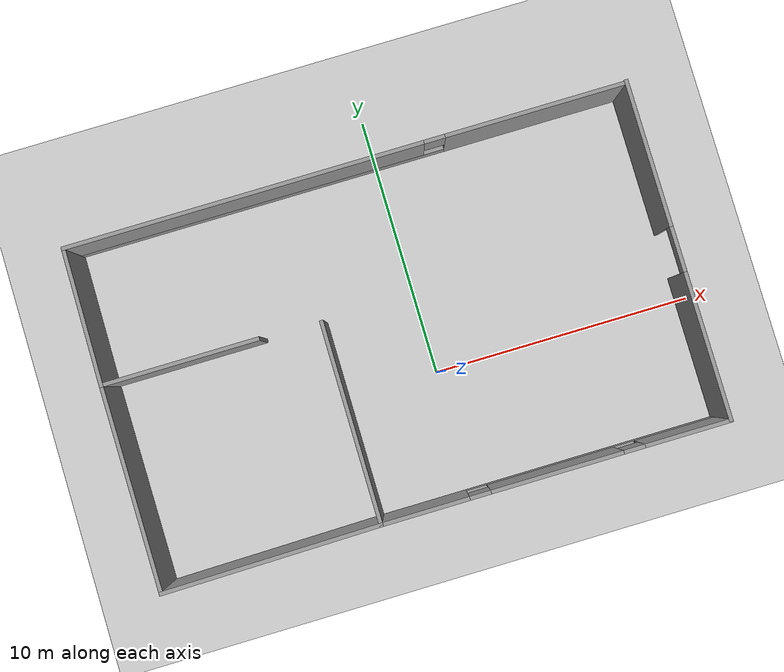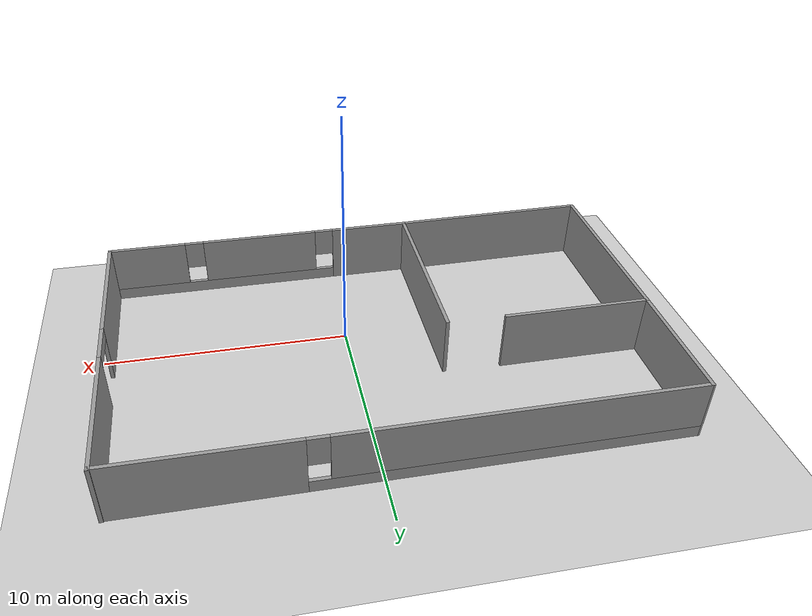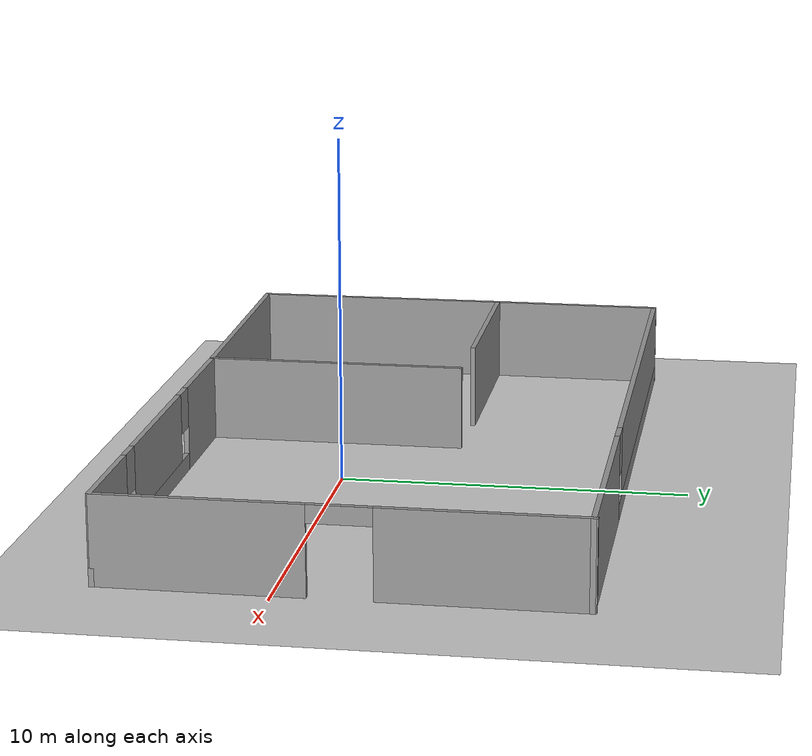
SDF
<sdf version="1.7">
 <world name="default">
  <light name="sun" type="directional">
   <pose>0 0 10 0 -0 0</pose>
   <diffuse>0.8 0.8 0.8 1</diffuse>
   <specular>0.2 0.2 0.2 1</specular>
   <attenuation>
    <range>1000</range>
    <constant>0.9</constant>
    <linear>0.01</linear>
    <quadratic>0.001</quadratic>
   </attenuation>
   <direction>-0.5 0.1 -0.9</direction>
   <spot><inner_angle>0</inner_angle><outer_angle>0</outer_angle><falloff>0</falloff></spot>
  </light>
  <model name="ground_plane">
   <static>1</static>
   <link name="link">
    <collision name="collision">
     <geometry><plane><normal>0 0 1</normal><size>100 100</size></plane></geometry>
     <surface><friction><ode><mu>100</mu><mu2>50</mu2></ode></friction></surface>
    </collision>
    <visual name="visual">
     <cast_shadows>0</cast_shadows>
     <geometry><plane><normal>0 0 1</normal><size>100 100</size></plane></geometry>
     <material>
      <script><uri>file://media/materials/scripts/gazebo.material</uri><name>Gazebo/Grey</name></script>
     </material>
    </visual>
   </link>
  </model>
  <gravity>0 0 -9.8</gravity>
  <magnetic_field>6e-06 2.3e-05 -4.2e-05</magnetic_field>
  <atmosphere type="adiabatic"/>
  <physics type="ode">
   <max_step_size>0.001</max_step_size>
   <real_time_factor>1</real_time_factor>
   <real_time_update_rate>1000</real_time_update_rate>
  </physics>
  <scene><ambient>0.4 0.4 0.4 1</ambient><background>0.7 0.7 0.7 1</background><shadows>1</shadows></scene>
  <audio><device>default</device></audio>
  <spherical_coordinates>
   <surface_model>EARTH_WGS84</surface_model>
   <latitude_deg>0</latitude_deg>
   <longitude_deg>0</longitude_deg>
   <elevation>0</elevation>
   <heading_deg>0</heading_deg>
  </spherical_coordinates>
  <model name="cafe">
   <pose>-1.10766 1.71214 0 0 -0 0</pose>
   <link name="Wall_0">
    <collision name="Wall_0_Collision">
     <geometry><box><size>7.75 0.15 2.5</size></box></geometry>
     <pose>0 0 1.25 0 -0 0</pose>
    </collision>
    <visual name="Wall_0_Visual">
     <pose>0 0 1.25 0 -0 0</pose>
     <geometry><box><size>7.75 0.15 2.5</size></box></geometry>
     <material>
      <script><uri>file://media/materials/scripts/gazebo.material</uri><name>Gazebo/Grey</name></script>
      <ambient>1 1 1 1</ambient>
     </material>
     <meta><layer>0</layer></meta>
    </visual>
    <pose>-2.44233 -2.59214 0 0 -0 -1.5708</pose>
   </link>
   <link name="Wall_1">
    <pose>4.14284 -6.39214 0 0 -0 0</pose>
    <visual name="Wall_1_Visual_0">
     <pose>-4.95813 0 1.25 0 -0 0</pose>
     <geometry><box><size>3.40409 0.15 2.5</size></box></geometry>
     <material>
      <script><uri>file://media/materials/scripts/gazebo.material</uri><name>Gazebo/Grey</name></script>
      <ambient>1 1 1 1</ambient>
     </material>
     <meta><layer>0</layer></meta>
    </visual>
    <collision name="Wall_1_Collision_0">
     <geometry><box><size>3.40409 0.15 2.5</size></box></geometry>
     <pose>-4.95813 0 1.25 0 -0 0</pose>
    </collision>
    <visual name="Wall_1_Visual_1">
     <pose>1.70205 0 0.25 0 -0 0</pose>
     <geometry><box><size>9.91627 0.15 0.5</size></box></geometry>
     <material>
      <script><uri>file://media/materials/scripts/gazebo.material</uri><name>Gazebo/Grey</name></script>
      <ambient>1 1 1 1</ambient>
     </material>
     <meta><layer>0</layer></meta>
    </visual>
    <collision name="Wall_1_Collision_1">
     <geometry><box><size>9.91627 0.15 0.5</size></box></geometry>
     <pose>1.70205 0 0.25 0 -0 0</pose>
    </collision>
    <visual name="Wall_1_Visual_2">
     <pose>0.044064 0 1.5 0 -0 0</pose>
     <geometry><box><size>5.0003 0.15 2</size></box></geometry>
     <material>
      <script><uri>file://media/materials/scripts/gazebo.material</uri><name>Gazebo/Grey</name></script>
      <ambient>1 1 1 1</ambient>
     </material>
     <meta><layer>0</layer></meta>
    </visual>
    <collision name="Wall_1_Collision_2">
     <geometry><box><size>5.0003 0.15 2</size></box></geometry>
     <pose>0.044064 0 1.5 0 -0 0</pose>
    </collision>
    <visual name="Wall_1_Visual_3">
     <pose>5.0022 0 1.5 0 -0 0</pose>
     <geometry><box><size>3.31596 0.15 2</size></box></geometry>
     <material>
      <script><uri>file://media/materials/scripts/gazebo.material</uri><name>Gazebo/Grey</name></script>
      <ambient>1 1 1 1</ambient>
     </material>
     <meta><layer>0</layer></meta>
    </visual>
    <collision name="Wall_1_Collision_3">
     <geometry><box><size>3.31596 0.15 2</size></box></geometry>
     <pose>5.0022 0 1.5 0 -0 0</pose>
    </collision>
    <visual name="Wall_1_Visual_4">
     <pose>-2.85609 0 1.9 0 -0 0</pose>
     <geometry><box><size>0.8 0.15 1.2</size></box></geometry>
     <material>
      <script><uri>file://media/materials/scripts/gazebo.material</uri><name>Gazebo/Grey</name></script>
      <ambient>1 1 1 1</ambient>
     </material>
     <meta><layer>0</layer></meta>
    </visual>
    <collision name="Wall_1_Collision_4">
     <geometry><box><size>0.8 0.15 1.2</size></box></geometry>
     <pose>-2.85609 0 1.9 0 -0 0</pose>
    </collision>
    <visual name="Wall_1_Visual_5">
     <pose>2.94421 0 1.9 0 -0 0</pose>
     <geometry><box><size>0.8 0.15 1.2</size></box></geometry>
     <material>
      <script><uri>file://media/materials/scripts/gazebo.material</uri><name>Gazebo/Grey</name></script>
      <ambient>1 1 1 1</ambient>
     </material>
     <meta><layer>0</layer></meta>
    </visual>
    <collision name="Wall_1_Collision_5">
     <geometry><box><size>0.8 0.15 1.2</size></box></geometry>
     <pose>2.94421 0 1.9 0 -0 0</pose>
    </collision>
   </link>
   <link name="Wall_2">
    <pose>10.728 0.068041 0 0 -0 1.5708</pose>
    <visual name="Wall_2_Visual_0">
     <pose>-3.6803 0 1.25 0 -0 0</pose>
     <geometry><box><size>5.63941 0.15 2.5</size></box></geometry>
     <material>
      <script><uri>file://media/materials/scripts/gazebo.material</uri><name>Gazebo/Grey</name></script>
      <ambient>1 1 1 1</ambient>
     </material>
     <meta><layer>0</layer></meta>
    </visual>
    <collision name="Wall_2_Collision_0">
     <geometry><box><size>5.63941 0.15 2.5</size></box></geometry>
     <pose>-3.6803 0 1.25 0 -0 0</pose>
    </collision>
    <visual name="Wall_2_Visual_1">
     <pose>3.68203 0 1.25 0 -0 0</pose>
     <geometry><box><size>5.63594 0.15 2.5</size></box></geometry>
     <material>
      <script><uri>file://media/materials/scripts/gazebo.material</uri><name>Gazebo/Grey</name></script>
      <ambient>1 1 1 1</ambient>
     </material>
     <meta><layer>0</layer></meta>
    </visual>
    <collision name="Wall_2_Collision_1">
     <geometry><box><size>5.63594 0.15 2.5</size></box></geometry>
     <pose>3.68203 0 1.25 0 -0 0</pose>
    </collision>
    <visual name="Wall_2_Visual_2">
     <pose>0.001736 0 2.25 0 -0 0</pose>
     <geometry><box><size>1.72466 0.15 0.5</size></box></geometry>
     <material>
      <script><uri>file://media/materials/scripts/gazebo.material</uri><name>Gazebo/Grey</name></script>
      <ambient>1 1 1 1</ambient>
     </material>
     <meta><layer>0</layer></meta>
    </visual>
    <collision name="Wall_2_Collision_2">
     <geometry><box><size>1.72466 0.15 0.5</size></box></geometry>
     <pose>0.001736 0 2.25 0 -0 0</pose>
    </collision>
   </link>
   <link name="Wall_3">
    <pose>0.017844 6.45786 0 0 -0 3.14159</pose>
    <visual name="Wall_3_Visual_0">
     <pose>-7.2781 0 1.25 0 -0 0</pose>
     <geometry><box><size>7.01416 0.15 2.5</size></box></geometry>
     <material>
      <script><uri>file://media/materials/scripts/gazebo.material</uri><name>Gazebo/Grey</name></script>
      <ambient>1 1 1 1</ambient>
     </material>
     <meta><layer>0</layer></meta>
    </visual>
    <collision name="Wall_3_Collision_0">
     <geometry><box><size>7.01416 0.15 2.5</size></box></geometry>
     <pose>-7.2781 0 1.25 0 -0 0</pose>
    </collision>
    <visual name="Wall_3_Visual_1">
     <pose>3.50708 0 0.25 0 -0 0</pose>
     <geometry><box><size>14.5562 0.15 0.5</size></box></geometry>
     <material>
      <script><uri>file://media/materials/scripts/gazebo.material</uri><name>Gazebo/Grey</name></script>
      <ambient>1 1 1 1</ambient>
     </material>
     <meta><layer>0</layer></meta>
    </visual>
    <collision name="Wall_3_Collision_1">
     <geometry><box><size>14.5562 0.15 0.5</size></box></geometry>
     <pose>3.50708 0 0.25 0 -0 0</pose>
    </collision>
    <visual name="Wall_3_Visual_2">
     <pose>3.90708 0 1.5 0 -0 0</pose>
     <geometry><box><size>13.7562 0.15 2</size></box></geometry>
     <material>
      <script><uri>file://media/materials/scripts/gazebo.material</uri><name>Gazebo/Grey</name></script>
      <ambient>1 1 1 1</ambient>
     </material>
     <meta><layer>0</layer></meta>
    </visual>
    <collision name="Wall_3_Collision_2">
     <geometry><box><size>13.7562 0.15 2</size></box></geometry>
     <pose>3.90708 0 1.5 0 -0 0</pose>
    </collision>
    <visual name="Wall_3_Visual_3">
     <pose>-3.37102 0 1.9 0 -0 0</pose>
     <geometry><box><size>0.8 0.15 1.2</size></box></geometry>
     <material>
      <script><uri>file://media/materials/scripts/gazebo.material</uri><name>Gazebo/Grey</name></script>
      <ambient>1 1 1 1</ambient>
     </material>
     <meta><layer>0</layer></meta>
    </visual>
    <collision name="Wall_3_Collision_3">
     <geometry><box><size>0.8 0.15 1.2</size></box></geometry>
     <pose>-3.37102 0 1.9 0 -0 0</pose>
    </collision>
   </link>
   <link name="Wall_4">
    <collision name="Wall_4_Collision">
     <geometry><box><size>5.3176 0.15 2.5</size></box></geometry>
     <pose>0 0 1.25 0 -0 0</pose>
    </collision>
    <visual name="Wall_4_Visual">
     <pose>0 0 1.25 0 -0 0</pose>
     <geometry><box><size>5.3176 0.15 2.5</size></box></geometry>
     <material>
      <script><uri>file://media/materials/scripts/gazebo.material</uri><name>Gazebo/Grey</name></script>
      <ambient>1 1 1 1</ambient>
     </material>
     <meta><layer>0</layer></meta>
    </visual>
    <pose>-10.7099 3.87412 0 0 -0 -1.5776</pose>
   </link>
   <link name="Wall_5">
    <collision name="Wall_5_Collision">
     <geometry><box><size>6 0.15 2.5</size></box></geometry>
     <pose>0 0 1.25 0 -0 0</pose>
    </collision>
    <visual name="Wall_5_Visual">
     <pose>0 0 1.25 0 -0 0</pose>
     <geometry><box><size>6 0.15 2.5</size></box></geometry>
     <material>
      <script><uri>file://media/materials/scripts/gazebo.material</uri><name>Gazebo/Grey</name></script>
      <ambient>1 1 1 1</ambient>
     </material>
     <meta><layer>0</layer></meta>
    </visual>
    <pose>-7.76734 1.29039 0 0 -0 0</pose>
   </link>
   <link name="Wall_7">
    <collision name="Wall_7_Collision">
     <geometry><box><size>7.9326 0.15 2.5</size></box></geometry>
     <pose>0 0 1.25 0 -0 0</pose>
    </collision>
    <visual name="Wall_7_Visual">
     <pose>0 0 1.25 0 -0 0</pose>
     <geometry><box><size>7.9326 0.15 2.5</size></box></geometry>
     <material>
      <script><uri>file://media/materials/scripts/gazebo.material</uri><name>Gazebo/Grey</name></script>
      <ambient>1 1 1 1</ambient>
     </material>
     <meta><layer>0</layer></meta>
    </visual>
    <pose>-10.7099 -2.60088 0 0 -0 -1.56628</pose>
   </link>
   <link name="Wall_8">
    <collision name="Wall_8_Collision">
     <geometry><box><size>8.40061 0.15 2.5</size></box></geometry>
     <pose>0 0 1.25 0 -0 0</pose>
    </collision>
    <visual name="Wall_8_Visual">
     <pose>0 0 1.25 0 -0 0</pose>
     <geometry><box><size>8.40061 0.15 2.5</size></box></geometry>
     <material>
      <script><uri>file://media/materials/scripts/gazebo.material</uri><name>Gazebo/Grey</name></script>
      <ambient>1 1 1 1</ambient>
     </material>
     <meta><layer>0</layer></meta>
    </visual>
    <pose>-6.56733 -6.44214 0 0 -0 0.012121</pose>
   </link>
   <static>1</static>
  </model>
 </world>
</sdf>
